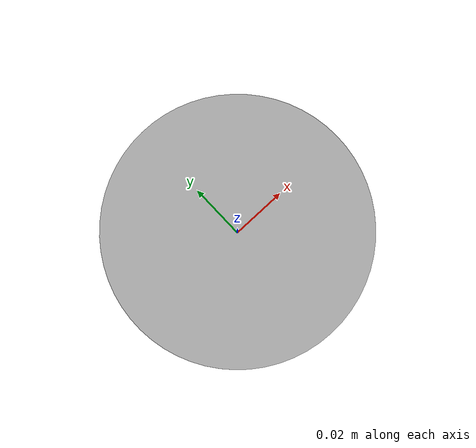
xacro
<?xml version="1.0"?>

<robot name="disc2">

  <link name="disc2">
    <inertial>
      <origin xyz="0 0 0" />
      <mass value="0.1" />
      <inertia  ixx="1" ixy="0"  ixz="0"  iyy="1"  iyz="0"  izz="1"/>
    </inertial>
    <visual>
      <origin xyz="0 0 0"/>
      <geometry>
        <mesh filename="package://tower_of_hanoi/meshes/disc_80.dae"/>
      </geometry>
    </visual>
    <collision>
      <origin xyz="0 0 0.008"/>
      <geometry>
        <cylinder length="0.022" radius="0.04"/>
      </geometry>
    </collision>
  </link>

  <gazebo reference="disc2">
    <mu1>10.0</mu1>
    <mu2>10.0</mu2>
    <maxVel>0.0</maxVel>
  </gazebo>

</robot>
